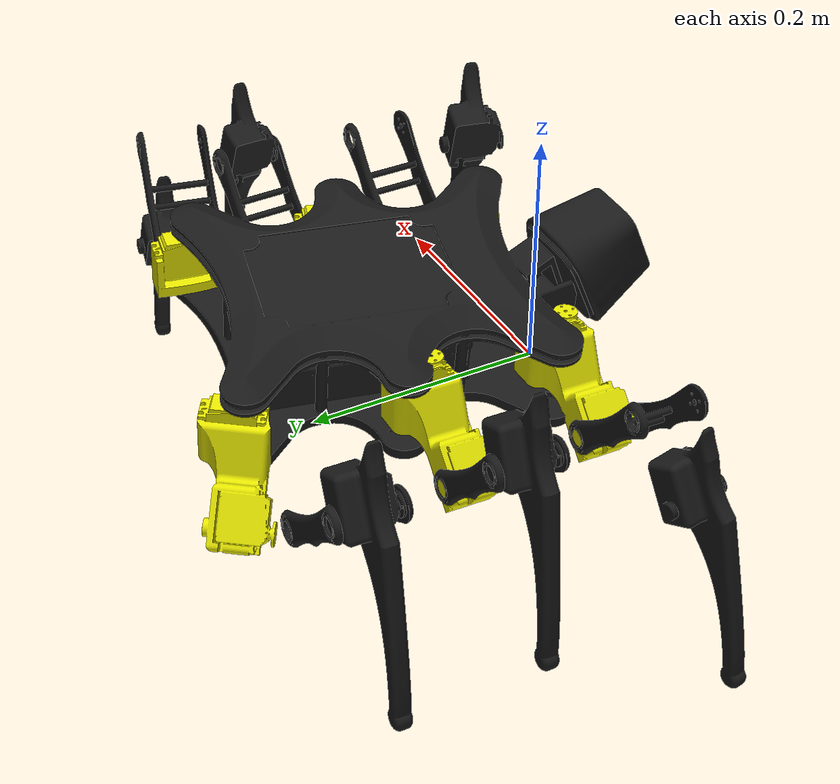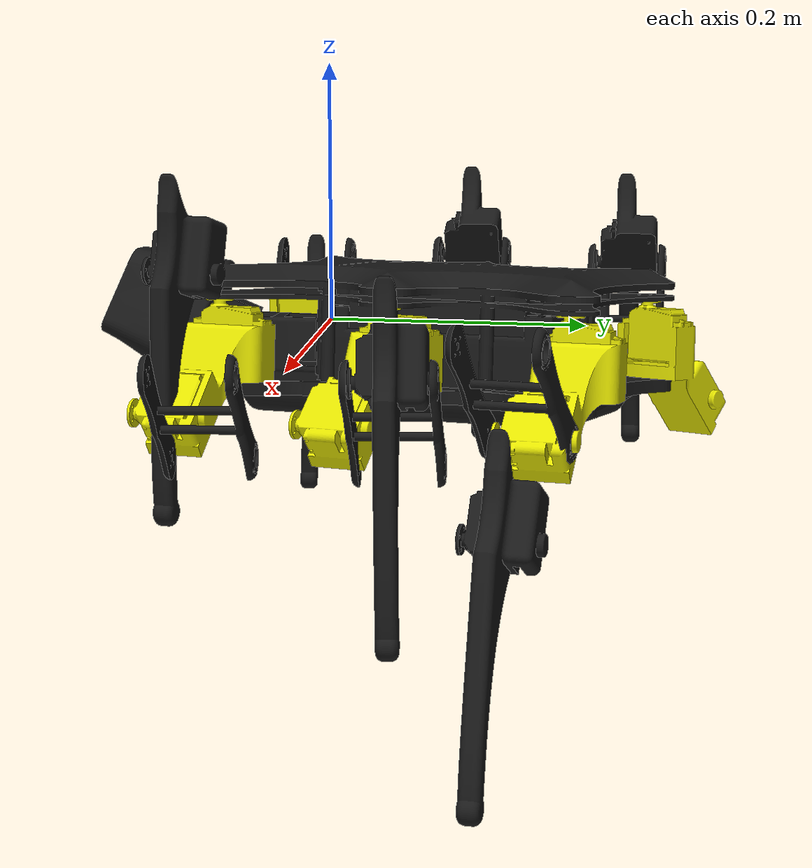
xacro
<?xml version="1.0" ?>
<robot name="hexapod" xmlns:xacro="http://www.ros.org/wiki/xacro">

<xacro:include filename="$(find hexapod_description)/urdf/materials.xacro" />
<xacro:include filename="$(find hexapod_description)/urdf/hexapod.trans" />
<xacro:include filename="$(find hexapod_description)/urdf/hexapod.gazebo" />
<xacro:include filename="$(find hexapod_control)/ros2_control/ros2_control.xacro" />

<link name="base_link">
  <inertial>
    <origin xyz="0.10909777793044037 0.06468612005136756 0.006889314215312581" rpy="0 0 0"/>
    <mass value="0.2"/>
    <inertia ixx="0.168182" iyy="0.074083" izz="0.200235" ixy="0.006215" iyz="0.001309" ixz="-0.000356"/>
  </inertial>
  <visual>
    <origin xyz="0 0 0" rpy="0 0 0"/>
    <geometry>
      <mesh filename="file://$(find hexapod_description)/meshes/base_link.stl" scale="0.001 0.001 0.001"/>
    </geometry>
    <material name="silver"/>
  </visual>
  <collision>
    <origin xyz="0 0 0" rpy="0 0 0"/>
    <geometry>
      <mesh filename="file://$(find hexapod_description)/meshes/base_link.stl" scale="0.001 0.001 0.001"/>
    </geometry>
  </collision>
</link>

<link name="leg_1_link_2_1">
  <inertial>
    <origin xyz="-0.02800590467788834 0.004191461427254562 -0.05523214859518318" rpy="0 0 0"/>
    <mass value="1.012661950148346"/>
    <inertia ixx="0.000816" iyy="0.001315" izz="0.00101" ixy="-0.000122" iyz="-8.3e-05" ixz="-0.000522"/>
  </inertial>
  <visual>
    <origin xyz="0.003565 0.030766 -0.036053" rpy="0 0 0"/>
    <geometry>
      <mesh filename="file://$(find hexapod_description)/meshes/leg_1_link_2_1.stl" scale="0.001 0.001 0.001"/>
    </geometry>
    <material name="gold"/>
  </visual>
  <collision>
    <origin xyz="0.003565 0.030766 -0.036053" rpy="0 0 0"/>
    <geometry>
      <mesh filename="file://$(find hexapod_description)/meshes/leg_1_link_2_1.stl" scale="0.001 0.001 0.001"/>
    </geometry>
  </collision>
</link>

<link name="leg_1_link_3_1">
  <inertial>
    <origin xyz="-0.036766491881322055 0.024823115706118865 0.034277514263341684" rpy="0 0 0"/>
    <mass value="0.22871600239093776"/>
    <inertia ixx="0.000307" iyy="0.000276" izz="0.000321" ixy="-2e-06" iyz="-2e-06" ixz="0.000128"/>
  </inertial>
  <visual>
    <origin xyz="0.071402 0.062467 0.04316" rpy="0 0 0"/>
    <geometry>
      <mesh filename="file://$(find hexapod_description)/meshes/leg_1_link_3_1.stl" scale="0.001 0.001 0.001"/>
    </geometry>
    <material name="silver"/>
  </visual>
  <collision>
    <origin xyz="0.071402 0.062467 0.04316" rpy="0 0 0"/>
    <geometry>
      <mesh filename="file://$(find hexapod_description)/meshes/leg_1_link_3_1.stl" scale="0.001 0.001 0.001"/>
    </geometry>
  </collision>
</link>

<link name="leg_1_link_1_1">
  <inertial>
    <origin xyz="-0.01779410893760297 0.028725816249512953 -0.02370507712814386" rpy="0 0 0"/>
    <mass value="0.907399585528797"/>
    <inertia ixx="0.002849" iyy="0.003176" izz="0.000497" ixy="-2.4e-05" iyz="-1.8e-05" ixz="-0.000878"/>
  </inertial>
  <visual>
    <origin xyz="0.144088 0.062627 -0.025519" rpy="0 0 0"/>
    <geometry>
      <mesh filename="file://$(find hexapod_description)/meshes/leg_1_link_1_1.stl" scale="0.001 0.001 0.001"/>
    </geometry>
    <material name="silver"/>
  </visual>
  <collision>
    <origin xyz="0.144088 0.062627 -0.025519" rpy="0 0 0"/>
    <geometry>
      <mesh filename="file://$(find hexapod_description)/meshes/leg_1_link_1_1.stl" scale="0.001 0.001 0.001"/>
    </geometry>
  </collision>
</link>

<link name="leg_3_link_3_1">
  <inertial>
    <origin xyz="-0.02800203130695705 0.004225621248029748 -0.05523202595087612" rpy="0 0 0"/>
    <mass value="1.0126620006859057"/>
    <inertia ixx="0.000815" iyy="0.001315" izz="0.001011" ixy="-0.000122" iyz="-8.2e-05" ixz="-0.000522"/>
  </inertial>
  <visual>
    <origin xyz="-0.00013 -0.229172 -0.040385" rpy="0 0 0"/>
    <geometry>
      <mesh filename="file://$(find hexapod_description)/meshes/leg_3_link_3_1.stl" scale="0.001 0.001 0.001"/>
    </geometry>
    <material name="gold"/>
  </visual>
  <collision>
    <origin xyz="-0.00013 -0.229172 -0.040385" rpy="0 0 0"/>
    <geometry>
      <mesh filename="file://$(find hexapod_description)/meshes/leg_3_link_3_1.stl" scale="0.001 0.001 0.001"/>
    </geometry>
  </collision>
</link>

<link name="leg_3_link_2_1">
  <inertial>
    <origin xyz="-0.038612908125580755 0.024931950622849613 0.03209860064693253" rpy="0 0 0"/>
    <mass value="0.2287158182027981"/>
    <inertia ixx="0.000293" iyy="0.000276" izz="0.000335" ixy="-2e-06" iyz="-3e-06" ixz="0.000126"/>
  </inertial>
  <visual>
    <origin xyz="0.067748 -0.197555 0.038827" rpy="0 0 0"/>
    <geometry>
      <mesh filename="file://$(find hexapod_description)/meshes/leg_3_link_2_1.stl" scale="0.001 0.001 0.001"/>
    </geometry>
    <material name="silver"/>
  </visual>
  <collision>
    <origin xyz="0.067748 -0.197555 0.038827" rpy="0 0 0"/>
    <geometry>
      <mesh filename="file://$(find hexapod_description)/meshes/leg_3_link_2_1.stl" scale="0.001 0.001 0.001"/>
    </geometry>
  </collision>
</link>

<link name="leg_3_link_1_1">
  <inertial>
    <origin xyz="-0.018585545303067386 0.028750059166235353 -0.023059753696741243" rpy="0 0 0"/>
    <mass value="0.9073986789846695"/>
    <inertia ixx="0.002786" iyy="0.003177" izz="0.00056" ixy="-2.4e-05" iyz="-1.5e-05" ixz="-0.000957"/>
  </inertial>
  <visual>
    <origin xyz="0.144246 -0.197611 -0.025579" rpy="0 0 0"/>
    <geometry>
      <mesh filename="file://$(find hexapod_description)/meshes/leg_3_link_1_1.stl" scale="0.001 0.001 0.001"/>
    </geometry>
    <material name="silver"/>
  </visual>
  <collision>
    <origin xyz="0.144246 -0.197611 -0.025579" rpy="0 0 0"/>
    <geometry>
      <mesh filename="file://$(find hexapod_description)/meshes/leg_3_link_1_1.stl" scale="0.001 0.001 0.001"/>
    </geometry>
  </collision>
</link>

<link name="leg_4_link_3_1">
  <inertial>
    <origin xyz="0.027827842510064177 0.004734636656079087 -0.05534052824142372" rpy="0 0 0"/>
    <mass value="1.0132520108724496"/>
    <inertia ixx="0.000814" iyy="0.001327" izz="0.001013" ixy="0.00011" iyz="-7e-05" ixz="0.000527"/>
  </inertial>
  <visual>
    <origin xyz="-0.212413 0.03383 -0.035672" rpy="0 0 0"/>
    <geometry>
      <mesh filename="file://$(find hexapod_description)/meshes/leg_4_link_3_1.stl" scale="0.001 0.001 0.001"/>
    </geometry>
    <material name="gold"/>
  </visual>
  <collision>
    <origin xyz="-0.212413 0.03383 -0.035672" rpy="0 0 0"/>
    <geometry>
      <mesh filename="file://$(find hexapod_description)/meshes/leg_4_link_3_1.stl" scale="0.001 0.001 0.001"/>
    </geometry>
  </collision>
</link>

<link name="leg_5_link_3_1">
  <inertial>
    <origin xyz="0.027727362528310262 0.005406300431649566 -0.05532850946625981" rpy="0 0 0"/>
    <mass value="1.0132520108724496"/>
    <inertia ixx="0.000808" iyy="0.001332" izz="0.001013" ixy="9.8e-05" iyz="-5.7e-05" ixz="0.000528"/>
  </inertial>
  <visual>
    <origin xyz="-0.22226 -0.096026 -0.037823" rpy="0 0 0"/>
    <geometry>
      <mesh filename="file://$(find hexapod_description)/meshes/leg_5_link_3_1.stl" scale="0.001 0.001 0.001"/>
    </geometry>
    <material name="gold"/>
  </visual>
  <collision>
    <origin xyz="-0.22226 -0.096026 -0.037823" rpy="0 0 0"/>
    <geometry>
      <mesh filename="file://$(find hexapod_description)/meshes/leg_5_link_3_1.stl" scale="0.001 0.001 0.001"/>
    </geometry>
  </collision>
</link>

<link name="leg_5_llink_2_1">
  <inertial>
    <origin xyz="0.03396675014480838 0.026560629165649705 0.0358235093671267" rpy="0 0 0"/>
    <mass value="0.22866968962750417"/>
    <inertia ixx="0.000318" iyy="0.000277" izz="0.00031" ixy="5e-06" iyz="-9e-06" ixz="-0.000127"/>
  </inertial>
  <visual>
    <origin xyz="-0.291986 -0.067645 0.041757" rpy="0 0 0"/>
    <geometry>
      <mesh filename="file://$(find hexapod_description)/meshes/leg_5_llink_2_1.stl" scale="0.001 0.001 0.001"/>
    </geometry>
    <material name="silver"/>
  </visual>
  <collision>
    <origin xyz="-0.291986 -0.067645 0.041757" rpy="0 0 0"/>
    <geometry>
      <mesh filename="file://$(find hexapod_description)/meshes/leg_5_llink_2_1.stl" scale="0.001 0.001 0.001"/>
    </geometry>
  </collision>
</link>

<link name="leg_5_link_1_1">
  <inertial>
    <origin xyz="0.015194262734185393 0.029558917275610747 -0.024828532452773375" rpy="0 0 0"/>
    <mass value="0.9074869947367368"/>
    <inertia ixx="0.002938" iyy="0.003182" izz="0.00041" ixy="1e-05" iyz="1.9e-05" ixz="0.000746"/>
  </inertial>
  <visual>
    <origin xyz="-0.361611 -0.070996 -0.029944" rpy="0 0 0"/>
    <geometry>
      <mesh filename="file://$(find hexapod_description)/meshes/leg_5_link_1_1.stl" scale="0.001 0.001 0.001"/>
    </geometry>
    <material name="silver"/>
  </visual>
  <collision>
    <origin xyz="-0.361611 -0.070996 -0.029944" rpy="0 0 0"/>
    <geometry>
      <mesh filename="file://$(find hexapod_description)/meshes/leg_5_link_1_1.stl" scale="0.001 0.001 0.001"/>
    </geometry>
  </collision>
</link>

<link name="leg_6_link_3_1">
  <inertial>
    <origin xyz="0.027727583128841132 0.005406596018310561 -0.055328604623189385" rpy="0 0 0"/>
    <mass value="1.0132520108724496"/>
    <inertia ixx="0.000808" iyy="0.001332" izz="0.001013" ixy="9.8e-05" iyz="-5.7e-05" ixz="0.000528"/>
  </inertial>
  <visual>
    <origin xyz="-0.216108 -0.226108 -0.040003" rpy="0 0 0"/>
    <geometry>
      <mesh filename="file://$(find hexapod_description)/meshes/leg_6_link_3_1.stl" scale="0.001 0.001 0.001"/>
    </geometry>
    <material name="gold"/>
  </visual>
  <collision>
    <origin xyz="-0.216108 -0.226108 -0.040003" rpy="0 0 0"/>
    <geometry>
      <mesh filename="file://$(find hexapod_description)/meshes/leg_6_link_3_1.stl" scale="0.001 0.001 0.001"/>
    </geometry>
  </collision>
</link>

<link name="leg_6_link_2_1">
  <inertial>
    <origin xyz="0.033966970745339664 0.02656092475231095 0.03582341421019737" rpy="0 0 0"/>
    <mass value="0.22866968962750417"/>
    <inertia ixx="0.000318" iyy="0.000277" izz="0.00031" ixy="5e-06" iyz="-9e-06" ixz="-0.000127"/>
  </inertial>
  <visual>
    <origin xyz="-0.285834 -0.197727 0.039577" rpy="0 0 0"/>
    <geometry>
      <mesh filename="file://$(find hexapod_description)/meshes/leg_6_link_2_1.stl" scale="0.001 0.001 0.001"/>
    </geometry>
    <material name="silver"/>
  </visual>
  <collision>
    <origin xyz="-0.285834 -0.197727 0.039577" rpy="0 0 0"/>
    <geometry>
      <mesh filename="file://$(find hexapod_description)/meshes/leg_6_link_2_1.stl" scale="0.001 0.001 0.001"/>
    </geometry>
  </collision>
</link>

<link name="leg_6_link_1_1">
  <inertial>
    <origin xyz="0.015193483334715818 0.029559212862271284 -0.024828627609704317" rpy="0 0 0"/>
    <mass value="0.9074869947367368"/>
    <inertia ixx="0.002938" iyy="0.003182" izz="0.00041" ixy="1e-05" iyz="1.9e-05" ixz="0.000746"/>
  </inertial>
  <visual>
    <origin xyz="-0.35546 -0.201078 -0.032124" rpy="0 0 0"/>
    <geometry>
      <mesh filename="file://$(find hexapod_description)/meshes/leg_6_link_1_1.stl" scale="0.001 0.001 0.001"/>
    </geometry>
    <material name="silver"/>
  </visual>
  <collision>
    <origin xyz="-0.35546 -0.201078 -0.032124" rpy="0 0 0"/>
    <geometry>
      <mesh filename="file://$(find hexapod_description)/meshes/leg_6_link_1_1.stl" scale="0.001 0.001 0.001"/>
    </geometry>
  </collision>
</link>

<link name="leg_2_link_3__1">
  <inertial>
    <origin xyz="-0.02799670252196973 0.004276094383967741 -0.055230856580649954" rpy="0 0 0"/>
    <mass value="1.0126607300527286"/>
    <inertia ixx="0.000815" iyy="0.001316" izz="0.001011" ixy="-0.000121" iyz="-8.1e-05" ixz="-0.000522"/>
  </inertial>
  <visual>
    <origin xyz="0.009716 -0.099316 -0.038233" rpy="0 0 0"/>
    <geometry>
      <mesh filename="file://$(find hexapod_description)/meshes/leg_2_link_3__1.stl" scale="0.001 0.001 0.001"/>
    </geometry>
    <material name="gold"/>
  </visual>
  <collision>
    <origin xyz="0.009716 -0.099316 -0.038233" rpy="0 0 0"/>
    <geometry>
      <mesh filename="file://$(find hexapod_description)/meshes/leg_2_link_3__1.stl" scale="0.001 0.001 0.001"/>
    </geometry>
  </collision>
</link>

<link name="leg_2_link_2_1">
  <inertial>
    <origin xyz="-0.03655269106835106 0.02492943001378764 0.034428145669553274" rpy="0 0 0"/>
    <mass value="0.22871574861196214"/>
    <inertia ixx="0.000308" iyy="0.000276" izz="0.00032" ixy="-2e-06" iyz="-3e-06" ixz="0.000128"/>
  </inertial>
  <visual>
    <origin xyz="0.077653 -0.06782 0.040976" rpy="0 0 0"/>
    <geometry>
      <mesh filename="file://$(find hexapod_description)/meshes/leg_2_link_2_1.stl" scale="0.001 0.001 0.001"/>
    </geometry>
    <material name="silver"/>
  </visual>
  <collision>
    <origin xyz="0.077653 -0.06782 0.040976" rpy="0 0 0"/>
    <geometry>
      <mesh filename="file://$(find hexapod_description)/meshes/leg_2_link_2_1.stl" scale="0.001 0.001 0.001"/>
    </geometry>
  </collision>
</link>

<link name="leg_2_link_1_1">
  <inertial>
    <origin xyz="-0.017401048235205913 0.028778315233383797 -0.023932405270489385" rpy="0 0 0"/>
    <mass value="0.9073984436402253"/>
    <inertia ixx="0.002871" iyy="0.003177" izz="0.000475" ixy="-2.3e-05" iyz="-1.6e-05" ixz="-0.000848"/>
  </inertial>
  <visual>
    <origin xyz="0.150058 -0.06787 -0.027999" rpy="0 0 0"/>
    <geometry>
      <mesh filename="file://$(find hexapod_description)/meshes/leg_2_link_1_1.stl" scale="0.001 0.001 0.001"/>
    </geometry>
    <material name="silver"/>
  </visual>
  <collision>
    <origin xyz="0.150058 -0.06787 -0.027999" rpy="0 0 0"/>
    <geometry>
      <mesh filename="file://$(find hexapod_description)/meshes/leg_2_link_1_1.stl" scale="0.001 0.001 0.001"/>
    </geometry>
  </collision>
</link>

<link name="leg_4_link_2_1">
  <inertial>
    <origin xyz="0.03461242398825387 0.025734686880203556 0.03580824475570928" rpy="0 0 0"/>
    <mass value="0.22866968962750417"/>
    <inertia ixx="0.000318" iyy="0.000276" izz="0.00031" ixy="4e-06" iyz="-6e-06" ixz="-0.000128"/>
  </inertial>
  <visual>
    <origin xyz="-0.281402 0.063887 0.043935" rpy="0 0 0"/>
    <geometry>
      <mesh filename="file://$(find hexapod_description)/meshes/leg_4_link_2_1.stl" scale="0.001 0.001 0.001"/>
    </geometry>
    <material name="silver"/>
  </visual>
  <collision>
    <origin xyz="-0.281402 0.063887 0.043935" rpy="0 0 0"/>
    <geometry>
      <mesh filename="file://$(find hexapod_description)/meshes/leg_4_link_2_1.stl" scale="0.001 0.001 0.001"/>
    </geometry>
  </collision>
</link>

<link name="leg_4_link_1_1">
  <inertial>
    <origin xyz="0.015892767008512 0.029183605213325997 -0.024836511563021524" rpy="0 0 0"/>
    <mass value="0.9074869947367368"/>
    <inertia ixx="0.002939" iyy="0.003181" izz="0.000409" ixy="1.6e-05" iyz="0.0" ixz="0.000745"/>
  </inertial>
  <visual>
    <origin xyz="-0.351117 0.062215 -0.027738" rpy="0 0 0"/>
    <geometry>
      <mesh filename="file://$(find hexapod_description)/meshes/leg_4_link_1_1.stl" scale="0.001 0.001 0.001"/>
    </geometry>
    <material name="silver"/>
  </visual>
  <collision>
    <origin xyz="-0.351117 0.062215 -0.027738" rpy="0 0 0"/>
    <geometry>
      <mesh filename="file://$(find hexapod_description)/meshes/leg_4_link_1_1.stl" scale="0.001 0.001 0.001"/>
    </geometry>
  </collision>
</link>

<joint name="Leg_1_coxa" type="revolute">
  <origin xyz="-0.003565 -0.030766 0.036053" rpy="0 0 0"/>
  <parent link="base_link"/>
  <child link="leg_1_link_2_1"/>
  <axis xyz="-0.001529 0.016683 -0.99986"/>
  <limit effort="100" lower="-1.57" upper="0.785" velocity="100"/>
  <dynamics damping="10" friction="0.5"/>
</joint>

<joint name="Leg_1_femur" type="revolute">
  <origin xyz="-0.067837 -0.031701 -0.079213" rpy="0 0 0"/>
  <parent link="leg_1_link_2_1"/>
  <child link="leg_1_link_3_1"/>
  <axis xyz="-0.013531 -0.99977 -0.016661"/>
  <limit effort="100" lower="-1.57" upper="1.57" velocity="100"/>
  <dynamics damping="10" friction="0.5"/>
</joint>

<joint name="Leg_1_tibia" type="revolute">
  <origin xyz="-0.072686 -0.00016 0.068679" rpy="0 0 0"/>
  <parent link="leg_1_link_3_1"/>
  <child link="leg_1_link_1_1"/>
  <axis xyz="-0.013531 -0.99977 -0.016661"/>
  <limit effort="100" lower="-1.57" upper="1.57" velocity="100"/>
  <dynamics damping="10" friction="0.5"/>
</joint>

<joint name="Leg_3_coxa" type="revolute">
  <origin xyz="0.00013 0.229172 0.040385" rpy="0 0 0"/>
  <parent link="base_link"/>
  <child link="leg_3_link_3_1"/>
  <axis xyz="-0.001529 0.016683 -0.99986"/>
  <limit effort="100" lower="-0.785" upper="1.57" velocity="100"/>
  <dynamics damping="10" friction="0.5"/>
</joint>

<joint name="Leg_3_femur" type="revolute">
  <origin xyz="-0.067878 -0.031617 -0.079212" rpy="0 0 0"/>
  <parent link="leg_3_link_3_1"/>
  <child link="leg_3_link_2_1"/>
  <axis xyz="-0.014767 -0.999752 -0.016659"/>
  <limit effort="100" lower="-1.57" upper="1.57" velocity="100"/>
  <dynamics damping="10" friction="0.5"/>
</joint>

<joint name="Leg_3_tibia" type="revolute">
  <origin xyz="-0.076498 5.6e-05 0.064406" rpy="0 0 0"/>
  <parent link="leg_3_link_2_1"/>
  <child link="leg_3_link_1_1"/>
  <axis xyz="-0.014767 -0.999752 -0.016659"/>
  <limit effort="100" lower="-1.57" upper="1.57" velocity="100"/>
  <dynamics damping="10" friction="0.5"/>
</joint>

<joint name="Leg_4_coxa" type="revolute">
  <origin xyz="0.212413 -0.03383 0.035672" rpy="0 0 0"/>
  <parent link="base_link"/>
  <child link="leg_4_link_3_1"/>
  <axis xyz="-0.001529 0.016683 -0.99986"/>
  <limit effort="100" lower="-0.785" upper="1.57" velocity="100"/>
  <dynamics damping="10" friction="0.5"/>
</joint>

<joint name="Leg_5_coxa" type="revolute">
  <origin xyz="0.22226 0.096026 0.037823" rpy="0 0 0"/>
  <parent link="base_link"/>
  <child link="leg_5_link_3_1"/>
  <axis xyz="-0.001529 0.016683 -0.99986"/>
  <limit effort="100" lower="-0.785" upper="0.785" velocity="100"/>
  <dynamics damping="10" friction="0.5"/>
</joint>

<joint name="Leg_5_femur" type="revolute">
  <origin xyz="0.069726 -0.028381 -0.07958" rpy="0 0 0"/>
  <parent link="leg_5_link_3_1"/>
  <child link="leg_5_llink_2_1"/>
  <axis xyz="0.065266 -0.997727 -0.016747"/>
  <limit effort="100" lower="-1.57" upper="1.57" velocity="100"/>
  <dynamics damping="10" friction="0.5"/>
</joint>

<joint name="Leg_5_tibia" type="revolute">
  <origin xyz="0.069625 0.003351 0.071701" rpy="0 0 0"/>
  <parent link="leg_5_llink_2_1"/>
  <child link="leg_5_link_1_1"/>
  <axis xyz="-0.065266 0.997727 0.016747"/>
  <limit effort="100" lower="-1.57" upper="1.57" velocity="100"/>
  <dynamics damping="10" friction="0.5"/>
</joint>

<joint name="Leg_6_coxa" type="revolute">
  <origin xyz="0.216108 0.226108 0.040003" rpy="0 0 0"/>
  <parent link="base_link"/>
  <child link="leg_6_link_3_1"/>
  <axis xyz="-0.001529 0.016683 -0.99986"/>
  <limit effort="100" lower="-1.57" upper="0.785" velocity="100"/>
  <dynamics damping="10" friction="0.5"/>
</joint>

<joint name="Leg_6_femur" type="revolute">
  <origin xyz="0.069726 -0.028381 -0.07958" rpy="0 0 0"/>
  <parent link="leg_6_link_3_1"/>
  <child link="leg_6_link_2_1"/>
  <axis xyz="0.065266 -0.997727 -0.016747"/>
  <limit effort="100" lower="-1.57" upper="1.57" velocity="100"/>
  <dynamics damping="10" friction="0.5"/>
</joint>

<joint name="Leg_6_tibia" type="revolute">
  <origin xyz="0.069626 0.003351 0.071701" rpy="0 0 0"/>
  <parent link="leg_6_link_2_1"/>
  <child link="leg_6_link_1_1"/>
  <axis xyz="-0.065266 0.997727 0.016747"/>
  <limit effort="100" lower="-1.57" upper="1.57" velocity="100"/>
  <dynamics damping="10" friction="0.5"/>
</joint>

<joint name="Leg_2_coxa" type="revolute">
  <origin xyz="-0.009716 0.099316 0.038233" rpy="0 0 0"/>
  <parent link="base_link"/>
  <child link="leg_2_link_3__1"/>
  <axis xyz="-0.001529 0.016683 -0.99986"/>
  <limit effort="100" lower="-0.785" upper="0.785" velocity="100"/>
  <dynamics damping="10" friction="0.5"/>
</joint>

<joint name="Leg_2_femur" type="revolute">
  <origin xyz="-0.067937 -0.031496 -0.079209" rpy="0 0 0"/>
  <parent link="leg_2_link_3__1"/>
  <child link="leg_2_link_2_1"/>
  <axis xyz="-0.016551 -0.999724 -0.016656"/>
  <limit effort="100" lower="-1.57" upper="1.57" velocity="100"/>
  <dynamics damping="10" friction="0.5"/>
</joint>

<joint name="Leg_2_tibia" type="revolute">
  <origin xyz="-0.072405 5e-05 0.068975" rpy="0 0 0"/>
  <parent link="leg_2_link_2_1"/>
  <child link="leg_2_link_1_1"/>
  <axis xyz="-0.016551 -0.999724 -0.016656"/>
  <limit effort="100" lower="-1.57" upper="1.57" velocity="100"/>
  <dynamics damping="10" friction="0.5"/>
</joint>

<joint name="Leg_4_femur" type="revolute">
  <origin xyz="0.068989 -0.030057 -0.079607" rpy="0 0 0"/>
  <parent link="leg_4_link_3_1"/>
  <child link="leg_4_link_2_1"/>
  <axis xyz="0.041169 -0.999012 -0.016732"/>
  <limit effort="100" lower="-1.57" upper="1.57" velocity="100"/>
  <dynamics damping="10" friction="0.5"/>
</joint>

<joint name="Leg_4_tibia" type="revolute">
  <origin xyz="0.069715 0.001672 0.071673" rpy="0 0 0"/>
  <parent link="leg_4_link_2_1"/>
  <child link="leg_4_link_1_1"/>
  <axis xyz="-0.041169 0.999012 0.016732"/>
  <limit effort="100" lower="-1.57" upper="1.57" velocity="100"/>
  <dynamics damping="10" friction="0.5"/>
</joint>

</robot>

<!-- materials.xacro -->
<robot name="hexapod" xmlns:xacro="http://www.ros.org/wiki/xacro" >

<material name="silver">
  <color rgba="0.100 0.100 0.100 1.000"/>
</material>

<material name="gold">
  <color rgba="0.90 0.90 0.00 1.000"/>
</material>

</robot>

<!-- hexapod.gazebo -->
<robot name="hexapod" xmlns:xacro="http://www.ros.org/wiki/xacro" >

<xacro:property name="body_color" value="Gazebo/Silver" />

<gazebo reference="base_link">
  <material>${body_color}</material>
  <mu1>0.2</mu1>
  <mu2>0.2</mu2>
  <self_collide>true</self_collide>
  <gravity>true</gravity>
</gazebo>

<gazebo reference="leg_1_coxa_1">
  <material>${body_color}</material>
  <mu1>0.2</mu1>
  <mu2>0.2</mu2>
  <self_collide>true</self_collide>
</gazebo>

<gazebo reference="leg_1_femur_1">
  <material>${body_color}</material>
  <mu1>0.2</mu1>
  <mu2>0.2</mu2>
  <self_collide>true</self_collide>
</gazebo>

<gazebo reference="leg_1_tibia_1">
  <material>${body_color}</material>
  <mu1>0.2</mu1>
  <mu2>0.2</mu2>
  <self_collide>true</self_collide>
</gazebo>

<gazebo reference="leg_3_coxa_1">
  <material>${body_color}</material>
  <mu1>0.2</mu1>
  <mu2>0.2</mu2>
  <self_collide>true</self_collide>
</gazebo>

<gazebo reference="leg_3_femur_1">
  <material>${body_color}</material>
  <mu1>0.2</mu1>
  <mu2>0.2</mu2>
  <self_collide>true</self_collide>
</gazebo>

<gazebo reference="leg_3_tibia_1">
  <material>${body_color}</material>
  <mu1>0.2</mu1>
  <mu2>0.2</mu2>
  <self_collide>true</self_collide>
</gazebo>

<gazebo reference="leg_4_coxa_1">
  <material>${body_color}</material>
  <mu1>0.2</mu1>
  <mu2>0.2</mu2>
  <self_collide>true</self_collide>
</gazebo>

<gazebo reference="leg_5_coxa_1">
  <material>${body_color}</material>
  <mu1>0.2</mu1>
  <mu2>0.2</mu2>
  <self_collide>true</self_collide>
</gazebo>

<gazebo reference="leg_5_femur_1">
  <material>${body_color}</material>
  <mu1>0.2</mu1>
  <mu2>0.2</mu2>
  <self_collide>true</self_collide>
</gazebo>

<gazebo reference="leg_5_tibia_1">
  <material>${body_color}</material>
  <mu1>0.2</mu1>
  <mu2>0.2</mu2>
  <self_collide>true</self_collide>
</gazebo>

<gazebo reference="leg_6_coxa_1">
  <material>${body_color}</material>
  <mu1>0.2</mu1>
  <mu2>0.2</mu2>
  <self_collide>true</self_collide>
</gazebo>

<gazebo reference="leg_6_femur_1">
  <material>${body_color}</material>
  <mu1>0.2</mu1>
  <mu2>0.2</mu2>
  <self_collide>true</self_collide>
</gazebo>

<gazebo reference="leg_6_tibia_1">
  <material>${body_color}</material>
  <mu1>0.2</mu1>
  <mu2>0.2</mu2>
  <self_collide>true</self_collide>
</gazebo>

<gazebo reference="leg_2_coxa_1">
  <material>${body_color}</material>
  <mu1>0.2</mu1>
  <mu2>0.2</mu2>
  <self_collide>true</self_collide>
</gazebo>

<gazebo reference="leg_2_femur_1">
  <material>${body_color}</material>
  <mu1>0.2</mu1>
  <mu2>0.2</mu2>
  <self_collide>true</self_collide>
</gazebo>

<gazebo reference="leg_2_tibia_1">
  <material>${body_color}</material>
  <mu1>0.2</mu1>
  <mu2>0.2</mu2>
  <self_collide>true</self_collide>
</gazebo>

<gazebo reference="leg_4_femur_1">
  <material>${body_color}</material>
  <mu1>0.2</mu1>
  <mu2>0.2</mu2>
  <self_collide>true</self_collide>
</gazebo>

<gazebo reference="leg_4_tibia_1">
  <material>${body_color}</material>
  <mu1>0.2</mu1>
  <mu2>0.2</mu2>
  <self_collide>true</self_collide>
</gazebo>

</robot>
